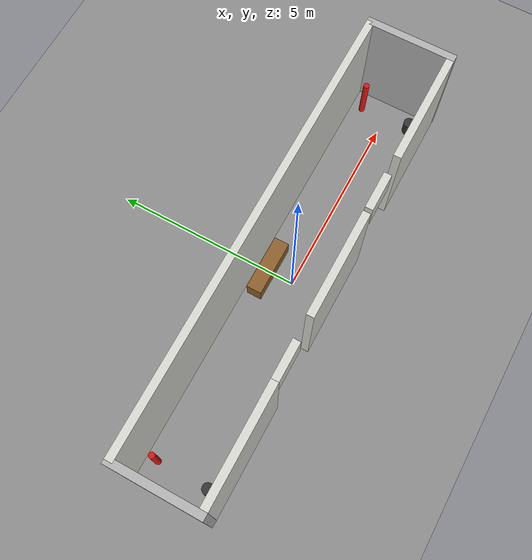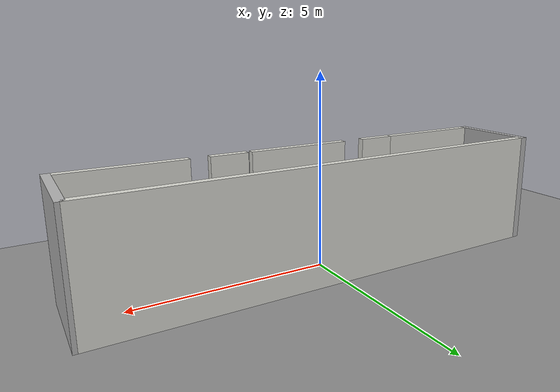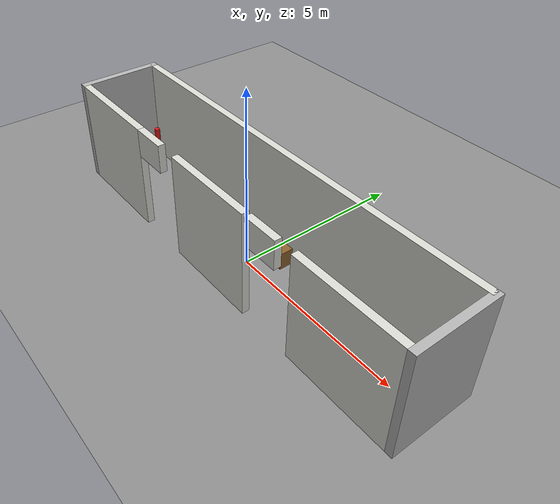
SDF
<?xml version="1.0"?>
<sdf version="1.9">
  <world name="corridor_world">

    <!-- ── Core plugins ─────────────────────────────────────────────────── -->
    <plugin filename="gz-sim-physics-system"    name="gz::sim::systems::Physics"/>
    <plugin filename="gz-sim-scene-broadcaster-system" name="gz::sim::systems::SceneBroadcaster"/>
    <plugin filename="gz-sim-contact-system"    name="gz::sim::systems::Contact"/>
    <plugin filename="gz-sim-user-commands-system" name="gz::sim::systems::UserCommands"/>
    <plugin filename="gz-sim-sensors-system"    name="gz::sim::systems::Sensors">
      <render_engine>ogre2</render_engine>
    </plugin>

    <physics name="default_physics" type="ode">
      <max_step_size>0.001</max_step_size>
      <real_time_factor>1.0</real_time_factor>
      <real_time_update_rate>1000</real_time_update_rate>
    </physics>
    <gravity>0 0 -9.81</gravity>

    <scene>
      <ambient>0.4 0.4 0.4 1</ambient>
      <background>0.55 0.57 0.6 1</background>
      <shadows>true</shadows>
    </scene>

    <!-- ── Corridor lighting (overhead strip lights) ──────────────────────── -->
    <light name="sun" type="directional">
      <pose>0 0 10 0 0 0</pose>
      <diffuse>0.6 0.6 0.6 1</diffuse>
      <specular>0.1 0.1 0.1 1</specular>
      <direction>0 0 -1</direction>
      <cast_shadows>false</cast_shadows>
    </light>
    <light name="strip_1" type="point">
      <pose>-4 0 2.5 0 0 0</pose>
      <diffuse>1 0.98 0.93 1</diffuse>
      <attenuation><range>5</range><constant>0.1</constant><linear>0.1</linear><quadratic>0.02</quadratic></attenuation>
    </light>
    <light name="strip_2" type="point">
      <pose>0 0 2.5 0 0 0</pose>
      <diffuse>1 0.98 0.93 1</diffuse>
      <attenuation><range>5</range><constant>0.1</constant><linear>0.1</linear><quadratic>0.02</quadratic></attenuation>
    </light>
    <light name="strip_3" type="point">
      <pose>4 0 2.5 0 0 0</pose>
      <diffuse>1 0.98 0.93 1</diffuse>
      <attenuation><range>5</range><constant>0.1</constant><linear>0.1</linear><quadratic>0.02</quadratic></attenuation>
    </light>

    <!-- ── Floor ─────────────────────────────────────────────────────────── -->
    <model name="ground_plane">
      <static>true</static>
      <link name="link">
        <collision name="col"><geometry><plane><normal>0 0 1</normal><size>20 20</size></plane></geometry></collision>
        <visual name="vis">
          <geometry><plane><normal>0 0 1</normal><size>20 20</size></plane></geometry>
          <material><ambient>0.55 0.55 0.55 1</ambient><diffuse>0.55 0.55 0.55 1</diffuse></material>
        </visual>
      </link>
    </model>

    <!-- North wall (y = +1.1) — solid continuous -->
    <model name="wall_north">
      <static>true</static><pose>0 1.1 1.5 0 0 0</pose>
      <link name="link">
        <collision name="col"><geometry><box><size>12.2 0.2 3.0</size></box></geometry></collision>
        <visual name="vis"><geometry><box><size>12.2 0.2 3.0</size></box></geometry>
          <material><ambient>0.85 0.85 0.82 1</ambient><diffuse>0.85 0.85 0.82 1</diffuse></material></visual>
      </link>
    </model>

    <!-- South wall (y = -1.1) — with two door openings at x=-2 and x=+2 -->
    <!-- South wall west segment -->
    <model name="wall_south_w">
      <static>true</static><pose>-4.5 -1.1 1.5 0 0 0</pose>
      <link name="link">
        <collision name="col"><geometry><box><size>3.0 0.2 3.0</size></box></geometry></collision>
        <visual name="vis"><geometry><box><size>3.0 0.2 3.0</size></box></geometry>
          <material><ambient>0.85 0.85 0.82 1</ambient><diffuse>0.85 0.85 0.82 1</diffuse></material></visual>
      </link>
    </model>
    <!-- Door opening west: x = -3 to -2 (1m gap) — above door frame -->
    <model name="wall_south_door_w_top">
      <static>true</static><pose>-2.5 -1.1 2.6 0 0 0</pose>
      <link name="link">
        <collision name="col"><geometry><box><size>1.0 0.2 0.8</size></box></geometry></collision>
        <visual name="vis"><geometry><box><size>1.0 0.2 0.8</size></box></geometry>
          <material><ambient>0.85 0.85 0.82 1</ambient><diffuse>0.85 0.85 0.82 1</diffuse></material></visual>
      </link>
    </model>
    <!-- South wall centre segment -->
    <model name="wall_south_c">
      <static>true</static><pose>0 -1.1 1.5 0 0 0</pose>
      <link name="link">
        <collision name="col"><geometry><box><size>2.8 0.2 3.0</size></box></geometry></collision>
        <visual name="vis"><geometry><box><size>2.8 0.2 3.0</size></box></geometry>
          <material><ambient>0.85 0.85 0.82 1</ambient><diffuse>0.85 0.85 0.82 1</diffuse></material></visual>
      </link>
    </model>
    <!-- Door opening east: x = +1.5 to +2.5 (1m gap) -->
    <model name="wall_south_door_e_top">
      <static>true</static><pose>2.0 -1.1 2.6 0 0 0</pose>
      <link name="link">
        <collision name="col"><geometry><box><size>1.0 0.2 0.8</size></box></geometry></collision>
        <visual name="vis"><geometry><box><size>1.0 0.2 0.8</size></box></geometry>
          <material><ambient>0.85 0.85 0.82 1</ambient><diffuse>0.85 0.85 0.82 1</diffuse></material></visual>
      </link>
    </model>
    <!-- South wall east segment -->
    <model name="wall_south_e">
      <static>true</static><pose>4.5 -1.1 1.5 0 0 0</pose>
      <link name="link">
        <collision name="col"><geometry><box><size>3.0 0.2 3.0</size></box></geometry></collision>
        <visual name="vis"><geometry><box><size>3.0 0.2 3.0</size></box></geometry>
          <material><ambient>0.85 0.85 0.82 1</ambient><diffuse>0.85 0.85 0.82 1</diffuse></material></visual>
      </link>
    </model>

    <!-- End walls (west x=-6, east x=+6) -->
    <model name="wall_west">
      <static>true</static><pose>-6.1 0 1.5 0 0 0</pose>
      <link name="link">
        <collision name="col"><geometry><box><size>0.2 2.4 3.0</size></box></geometry></collision>
        <visual name="vis"><geometry><box><size>0.2 2.4 3.0</size></box></geometry>
          <material><ambient>0.7 0.7 0.7 1</ambient><diffuse>0.7 0.7 0.7 1</diffuse></material></visual>
      </link>
    </model>
    <model name="wall_east">
      <static>true</static><pose>6.1 0 1.5 0 0 0</pose>
      <link name="link">
        <collision name="col"><geometry><box><size>0.2 2.4 3.0</size></box></geometry></collision>
        <visual name="vis"><geometry><box><size>0.2 2.4 3.0</size></box></geometry>
          <material><ambient>0.7 0.7 0.7 1</ambient><diffuse>0.7 0.7 0.7 1</diffuse></material></visual>
      </link>
    </model>

    <!-- ── Landmarks (distinct objects at known positions for loop closure) ─ -->

    <!-- Fire extinguishers (red cylinders, opposite ends of corridor) -->
    <model name="extinguisher_w">
      <static>true</static><pose>-5.5 0.7 0.6 0 0 0</pose>
      <link name="link">
        <collision name="col"><geometry><cylinder><radius>0.08</radius><length>1.2</length></cylinder></geometry></collision>
        <visual name="vis"><geometry><cylinder><radius>0.08</radius><length>1.2</length></cylinder></geometry>
          <material><ambient>0.85 0.08 0.08 1</ambient><diffuse>0.85 0.08 0.08 1</diffuse></material></visual>
      </link>
    </model>
    <model name="extinguisher_e">
      <static>true</static><pose>5.5 0.7 0.6 0 0 0</pose>
      <link name="link">
        <collision name="col"><geometry><cylinder><radius>0.08</radius><length>1.2</length></cylinder></geometry></collision>
        <visual name="vis"><geometry><cylinder><radius>0.08</radius><length>1.2</length></cylinder></geometry>
          <material><ambient>0.85 0.08 0.08 1</ambient><diffuse>0.85 0.08 0.08 1</diffuse></material></visual>
      </link>
    </model>

    <!-- Notice boards (blue rectangles on north wall — distinct visual features) -->
    <model name="notice_board_w">
      <static>true</static><pose>-3 1.05 1.5 0 0 0</pose>
      <link name="link">
        <collision name="col"><geometry><box><size>0.8 0.04 0.6</size></box></geometry></collision>
        <visual name="vis"><geometry><box><size>0.8 0.04 0.6</size></box></geometry>
          <material><ambient>0.1 0.25 0.6 1</ambient><diffuse>0.1 0.25 0.6 1</diffuse></material></visual>
      </link>
    </model>
    <model name="notice_board_e">
      <static>true</static><pose>3 1.05 1.5 0 0 0</pose>
      <link name="link">
        <collision name="col"><geometry><box><size>0.8 0.04 0.6</size></box></geometry></collision>
        <visual name="vis"><geometry><box><size>0.8 0.04 0.6</size></box></geometry>
          <material><ambient>0.6 0.25 0.1 1</ambient><diffuse>0.6 0.25 0.1 1</diffuse></material></visual>
      </link>
    </model>

    <!-- Bench (mid-corridor north side — loop closure anchor) -->
    <model name="bench">
      <static>true</static><pose>0 0.7 0.25 0 0 0</pose>
      <link name="link">
        <collision name="col"><geometry><box><size>1.5 0.4 0.5</size></box></geometry></collision>
        <visual name="vis"><geometry><box><size>1.5 0.4 0.5</size></box></geometry>
          <material><ambient>0.55 0.38 0.18 1</ambient><diffuse>0.55 0.38 0.18 1</diffuse></material></visual>
      </link>
    </model>

    <!-- Bins (near ends of corridor) -->
    <model name="bin_w">
      <static>true</static><pose>-5.5 -0.7 0.2 0 0 0</pose>
      <link name="link">
        <collision name="col"><geometry><cylinder><radius>0.15</radius><length>0.4</length></cylinder></geometry></collision>
        <visual name="vis"><geometry><cylinder><radius>0.15</radius><length>0.4</length></cylinder></geometry>
          <material><ambient>0.2 0.2 0.2 1</ambient><diffuse>0.2 0.2 0.2 1</diffuse></material></visual>
      </link>
    </model>
    <model name="bin_e">
      <static>true</static><pose>5.5 -0.7 0.2 0 0 0</pose>
      <link name="link">
        <collision name="col"><geometry><cylinder><radius>0.15</radius><length>0.4</length></cylinder></geometry></collision>
        <visual name="vis"><geometry><cylinder><radius>0.15</radius><length>0.4</length></cylinder></geometry>
          <material><ambient>0.2 0.2 0.2 1</ambient><diffuse>0.2 0.2 0.2 1</diffuse></material></visual>
      </link>
    </model>

  </world>
</sdf>
